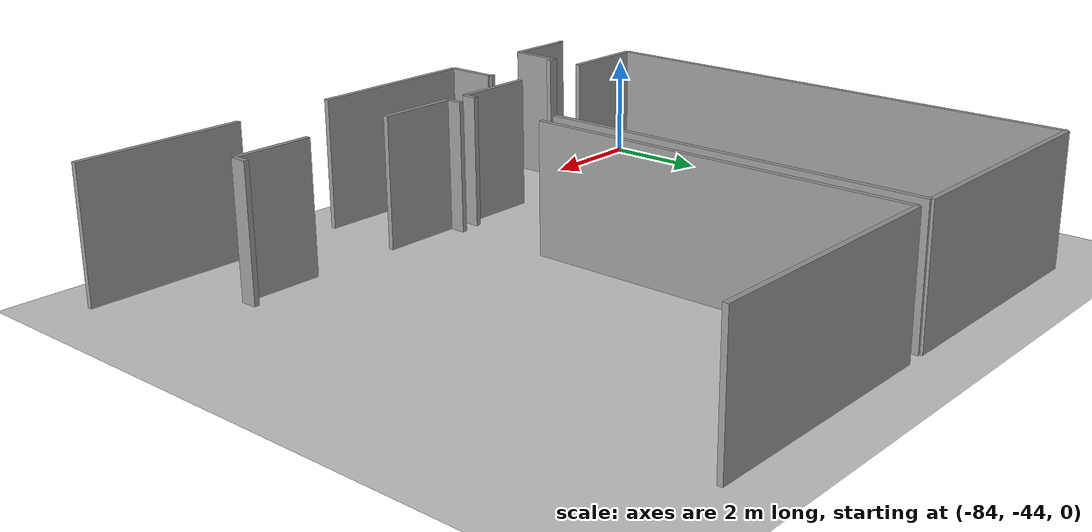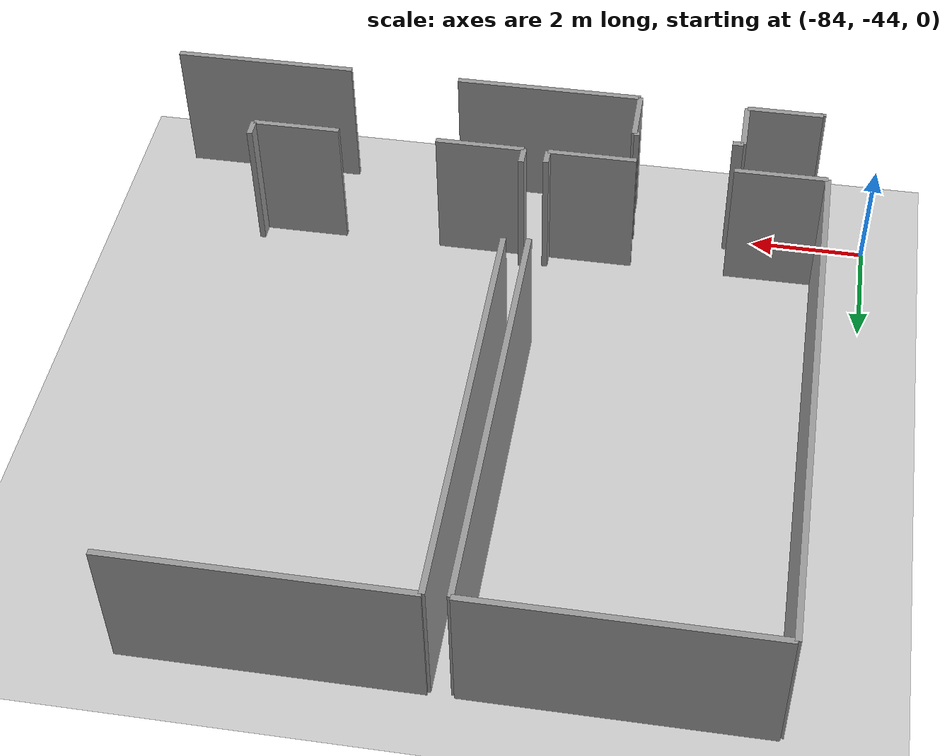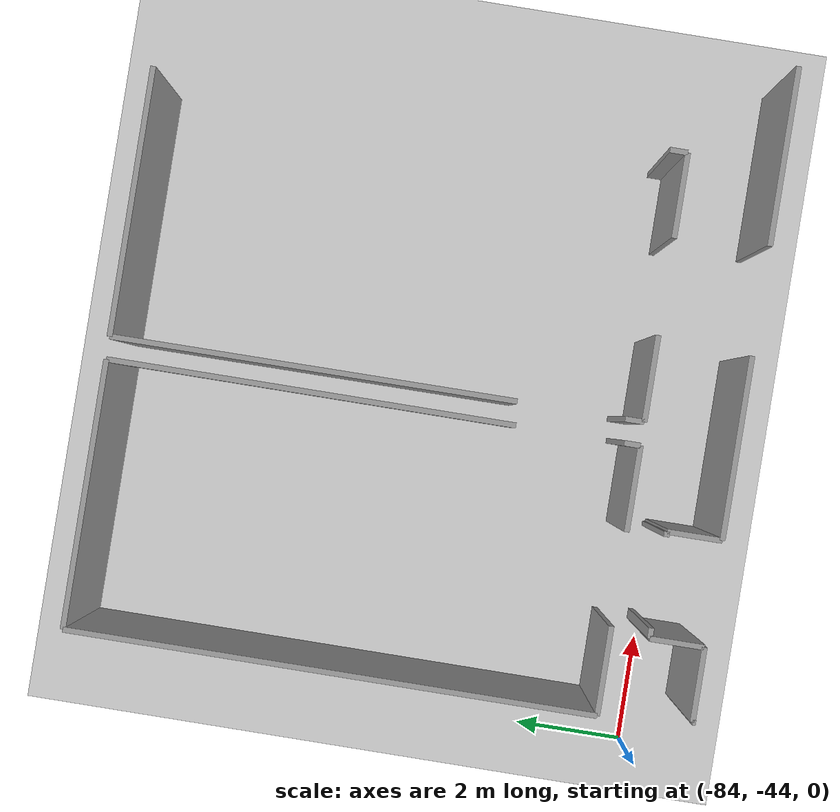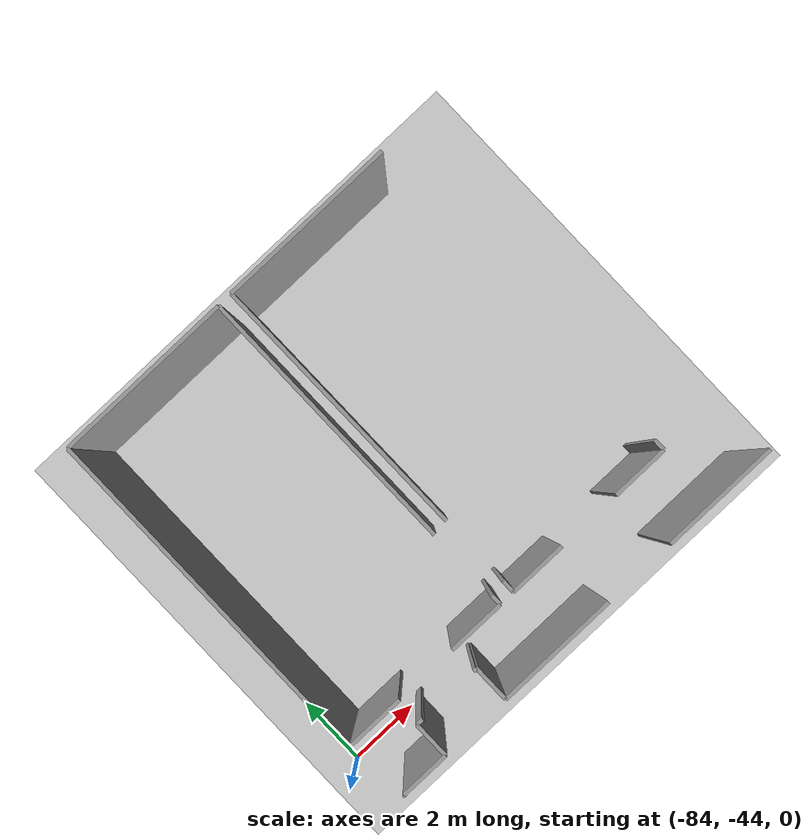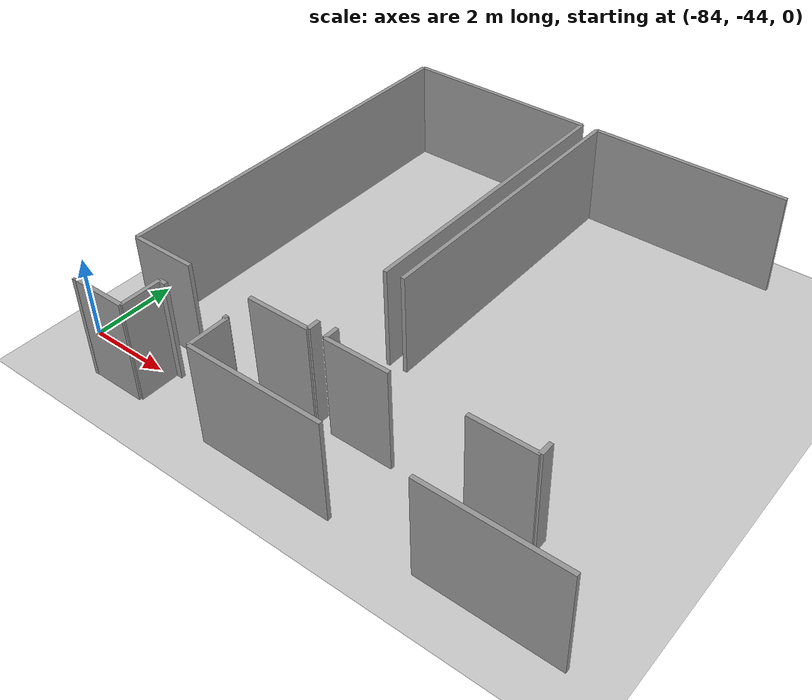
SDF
<sdf version="1.6">
 <world name="default">
  <model name="ground_plane">
   <static>1</static>
   <link name="link">
    <collision name="collision">
     <geometry><plane><normal>0 0 1</normal><size>100 100</size></plane></geometry>
     <surface><friction><ode><mu>100</mu><mu2>50</mu2></ode></friction></surface>
    </collision>
    <visual name="visual">
     <cast_shadows>0</cast_shadows>
     <geometry><plane><normal>0 0 1</normal><size>100 100</size></plane></geometry>
     <material>
      <script><uri>file://media/materials/scripts/gazebo.material</uri><name>Gazebo/Grey</name></script>
     </material>
    </visual>
   </link>
  </model>
  <model name="0510045925_40">
   <static>1</static>
   <link name="Wall_1151">
    <collision name="Wall_1151_Collision">
     <geometry><box><size>9.59214233141 0.1 2.5</size></box></geometry>
     <pose>4.79607116571 0 1.25 0 0 0</pose>
    </collision>
    <visual name="Wall_1151_Visual">
     <pose>4.79607116571 0 1.25 0 0 0</pose>
     <geometry><box><size>9.59214233141 0.1 2.5</size></box></geometry>
     <material>
      <script><uri>file://media/materials/scripts/gazebo.material</uri><name>Gazebo/Grey</name></script>
      <ambient>1 1 1 1</ambient>
     </material>
    </visual>
    <pose>50.806121672 -144.222659323 0 0 0 1.57079632679</pose>
   </link>
   <link name="Wall_1152">
    <collision name="Wall_1152_Collision">
     <geometry><box><size>4.84810030202 0.1 2.5</size></box></geometry>
     <pose>2.42405015101 0 1.25 0 0 0</pose>
    </collision>
    <visual name="Wall_1152_Visual">
     <pose>2.42405015101 0 1.25 0 0 0</pose>
     <geometry><box><size>4.84810030202 0.1 2.5</size></box></geometry>
     <material>
      <script><uri>file://media/materials/scripts/gazebo.material</uri><name>Gazebo/Grey</name></script>
      <ambient>1 1 1 1</ambient>
     </material>
    </visual>
    <pose>50.806121672 -134.630516992 0 0 0 0.0</pose>
   </link>
   <link name="Wall_1153">
    <collision name="Wall_1153_Collision">
     <geometry><box><size>7.35285906449 0.1 2.5</size></box></geometry>
     <pose>3.67642953225 0 1.25 0 0 0</pose>
    </collision>
    <visual name="Wall_1153_Visual">
     <pose>3.67642953225 0 1.25 0 0 0</pose>
     <geometry><box><size>7.35285906449 0.1 2.5</size></box></geometry>
     <material>
      <script><uri>file://media/materials/scripts/gazebo.material</uri><name>Gazebo/Grey</name></script>
      <ambient>1 1 1 1</ambient>
     </material>
    </visual>
    <pose>55.6542219741 -134.630516992 0 0 0 -1.57079632679</pose>
   </link>
   <link name="Wall_1154">
    <collision name="Wall_1154_Collision">
     <geometry><box><size>0.295677774676 0.1 2.5</size></box></geometry>
     <pose>0.147838887338 0 1.25 0 0 0</pose>
    </collision>
    <visual name="Wall_1154_Visual">
     <pose>0.147838887338 0 1.25 0 0 0</pose>
     <geometry><box><size>0.295677774676 0.1 2.5</size></box></geometry>
     <material>
      <script><uri>file://media/materials/scripts/gazebo.material</uri><name>Gazebo/Grey</name></script>
      <ambient>1 1 1 1</ambient>
     </material>
    </visual>
    <pose>55.6542219741 -143.925458745 0 0 0 -1.57079632679</pose>
   </link>
   <link name="Wall_1155">
    <collision name="Wall_1155_Collision">
     <geometry><box><size>1.5499606609 0.1 2.5</size></box></geometry>
     <pose>0.774980330448 0 1.25 0 0 0</pose>
    </collision>
    <visual name="Wall_1155_Visual">
     <pose>0.774980330448 0 1.25 0 0 0</pose>
     <geometry><box><size>1.5499606609 0.1 2.5</size></box></geometry>
     <material>
      <script><uri>file://media/materials/scripts/gazebo.material</uri><name>Gazebo/Grey</name></script>
      <ambient>1 1 1 1</ambient>
     </material>
    </visual>
    <pose>55.6542219741 -144.221136519 0 0 0 3.14159265359</pose>
   </link>
   <link name="Wall_1156">
    <collision name="Wall_1156_Collision">
     <geometry><box><size>1.6080817342 0.1 2.5</size></box></geometry>
     <pose>0.804040867098 0 1.25 0 0 0</pose>
    </collision>
    <visual name="Wall_1156_Visual">
     <pose>0.804040867098 0 1.25 0 0 0</pose>
     <geometry><box><size>1.6080817342 0.1 2.5</size></box></geometry>
     <material>
      <script><uri>file://media/materials/scripts/gazebo.material</uri><name>Gazebo/Grey</name></script>
      <ambient>1 1 1 1</ambient>
     </material>
    </visual>
    <pose>52.4142026852 -144.221136519 0 0 0 -3.14064568418</pose>
   </link>
   <link name="Wall_1157">
    <collision name="Wall_1157_Collision">
     <geometry><box><size>4.8468312987 0.1 2.5</size></box></geometry>
     <pose>2.42341564935 0 1.25 0 0 0</pose>
    </collision>
    <visual name="Wall_1157_Visual">
     <pose>2.42341564935 0 1.25 0 0 0</pose>
     <geometry><box><size>4.8468312987 0.1 2.5</size></box></geometry>
     <material>
      <script><uri>file://media/materials/scripts/gazebo.material</uri><name>Gazebo/Grey</name></script>
      <ambient>1 1 1 1</ambient>
     </material>
    </visual>
    <pose>56.0636024466 -134.622395371 0 0 0 0.0</pose>
   </link>
   <link name="Wall_1159">
    <collision name="Wall_1159_Collision">
     <geometry><box><size>0.322834445826 0.1 2.5</size></box></geometry>
     <pose>0.161417222913 0 1.25 0 0 0</pose>
    </collision>
    <visual name="Wall_1159_Visual">
     <pose>0.161417222913 0 1.25 0 0 0</pose>
     <geometry><box><size>0.322834445826 0.1 2.5</size></box></geometry>
     <material>
      <script><uri>file://media/materials/scripts/gazebo.material</uri><name>Gazebo/Grey</name></script>
      <ambient>1 1 1 1</ambient>
     </material>
    </visual>
    <pose>60.9104337453 -143.89677927 0 0 0 -1.57079632679</pose>
   </link>
   <link name="Wall_1160">
    <collision name="Wall_1160_Collision">
     <geometry><box><size>1.53447882033 0.1 2.5</size></box></geometry>
     <pose>0.767239410167 0 1.25 0 0 0</pose>
    </collision>
    <visual name="Wall_1160_Visual">
     <pose>0.767239410167 0 1.25 0 0 0</pose>
     <geometry><box><size>1.53447882033 0.1 2.5</size></box></geometry>
     <material>
      <script><uri>file://media/materials/scripts/gazebo.material</uri><name>Gazebo/Grey</name></script>
      <ambient>1 1 1 1</ambient>
     </material>
    </visual>
    <pose>60.9104337453 -144.219613715 0 0 0 3.14159265359</pose>
   </link>
   <link name="Wall_1161">
    <collision name="Wall_1161_Collision">
     <geometry><box><size>1.55782848151 0.1 2.5</size></box></geometry>
     <pose>0.778914240755 0 1.25 0 0 0</pose>
    </collision>
    <visual name="Wall_1161_Visual">
     <pose>0.778914240755 0 1.25 0 0 0</pose>
     <geometry><box><size>1.55782848151 0.1 2.5</size></box></geometry>
     <material>
      <script><uri>file://media/materials/scripts/gazebo.material</uri><name>Gazebo/Grey</name></script>
      <ambient>1 1 1 1</ambient>
     </material>
    </visual>
    <pose>57.6361513667 -144.219613715 0 0 0 3.14159265359</pose>
   </link>
   <link name="Wall_1162">
    <collision name="Wall_1162_Collision">
     <geometry><box><size>0.343138499023 0.1 2.5</size></box></geometry>
     <pose>0.171569249511 0 1.25 0 0 0</pose>
    </collision>
    <visual name="Wall_1162_Visual">
     <pose>0.171569249511 0 1.25 0 0 0</pose>
     <geometry><box><size>0.343138499023 0.1 2.5</size></box></geometry>
     <material>
      <script><uri>file://media/materials/scripts/gazebo.material</uri><name>Gazebo/Grey</name></script>
      <ambient>1 1 1 1</ambient>
     </material>
    </visual>
    <pose>56.0783228852 -144.219613715 0 0 0 1.57079632679</pose>
   </link>
   <link name="Wall_1163">
    <collision name="Wall_1163_Collision">
     <geometry><box><size>7.31607277735 0.1 2.5</size></box></geometry>
     <pose>3.65803638868 0 1.25 0 0 0</pose>
    </collision>
    <visual name="Wall_1163_Visual">
     <pose>3.65803638868 0 1.25 0 0 0</pose>
     <geometry><box><size>7.31607277735 0.1 2.5</size></box></geometry>
     <material>
      <script><uri>file://media/materials/scripts/gazebo.material</uri><name>Gazebo/Grey</name></script>
      <ambient>1 1 1 1</ambient>
     </material>
    </visual>
    <pose>56.0783228852 -141.938453339 0 0 0 1.57280839651</pose>
   </link>
   <link name="Wall_1269">
    <collision name="Wall_1269_Collision">
     <geometry><box><size>0.0568513489506 0.1 2.5</size></box></geometry>
     <pose>0.0284256744753 0 1.25 0 0 0</pose>
    </collision>
    <visual name="Wall_1269_Visual">
     <pose>0.0284256744753 0 1.25 0 0 0</pose>
     <geometry><box><size>0.0568513489506 0.1 2.5</size></box></geometry>
     <material>
      <script><uri>file://media/materials/scripts/gazebo.material</uri><name>Gazebo/Grey</name></script>
      <ambient>1 1 1 1</ambient>
     </material>
    </visual>
    <pose>50.9627166823 -145.968300297 0 0 0 1.57079632679</pose>
   </link>
   <link name="Wall_1270">
    <collision name="Wall_1270_Collision">
     <geometry><box><size>1.3420979163 0.1 2.5</size></box></geometry>
     <pose>0.671048958148 0 1.25 0 0 0</pose>
    </collision>
    <visual name="Wall_1270_Visual">
     <pose>0.671048958148 0 1.25 0 0 0</pose>
     <geometry><box><size>1.3420979163 0.1 2.5</size></box></geometry>
     <material>
      <script><uri>file://media/materials/scripts/gazebo.material</uri><name>Gazebo/Grey</name></script>
      <ambient>1 1 1 1</ambient>
     </material>
    </visual>
    <pose>50.9627166823 -145.911448948 0 0 0 0.0</pose>
   </link>
   <link name="Wall_1271">
    <collision name="Wall_1271_Collision">
     <geometry><box><size>0.983985178041 0.1 2.5</size></box></geometry>
     <pose>0.491992589021 0 1.25 0 0 0</pose>
    </collision>
    <visual name="Wall_1271_Visual">
     <pose>0.491992589021 0 1.25 0 0 0</pose>
     <geometry><box><size>0.983985178041 0.1 2.5</size></box></geometry>
     <material>
      <script><uri>file://media/materials/scripts/gazebo.material</uri><name>Gazebo/Grey</name></script>
      <ambient>1 1 1 1</ambient>
     </material>
    </visual>
    <pose>52.3048145986 -145.911448948 0 0 0 1.57079632679</pose>
   </link>
   <link name="Wall_1272">
    <collision name="Wall_1272_Collision">
     <geometry><box><size>0.190858100048 0.1 2.5</size></box></geometry>
     <pose>0.0954290500241 0 1.25 0 0 0</pose>
    </collision>
    <visual name="Wall_1272_Visual">
     <pose>0.0954290500241 0 1.25 0 0 0</pose>
     <geometry><box><size>0.190858100048 0.1 2.5</size></box></geometry>
     <material>
      <script><uri>file://media/materials/scripts/gazebo.material</uri><name>Gazebo/Grey</name></script>
      <ambient>1 1 1 1</ambient>
     </material>
    </visual>
    <pose>52.3048145986 -144.92746377 0 0 0 0.0</pose>
   </link>
   <link name="Wall_1273">
    <collision name="Wall_1273_Collision">
     <geometry><box><size>0.0931448440395 0.1 2.5</size></box></geometry>
     <pose>0.0465724220197 0 1.25 0 0 0</pose>
    </collision>
    <visual name="Wall_1273_Visual">
     <pose>0.0465724220197 0 1.25 0 0 0</pose>
     <geometry><box><size>0.0931448440395 0.1 2.5</size></box></geometry>
     <material>
      <script><uri>file://media/materials/scripts/gazebo.material</uri><name>Gazebo/Grey</name></script>
      <ambient>1 1 1 1</ambient>
     </material>
    </visual>
    <pose>54.1314179843 -144.92746377 0 0 0 0.0</pose>
   </link>
   <link name="Wall_1274">
    <collision name="Wall_1274_Collision">
     <geometry><box><size>0.992360599985 0.1 2.5</size></box></geometry>
     <pose>0.496180299992 0 1.25 0 0 0</pose>
    </collision>
    <visual name="Wall_1274_Visual">
     <pose>0.496180299992 0 1.25 0 0 0</pose>
     <geometry><box><size>0.992360599985 0.1 2.5</size></box></geometry>
     <material>
      <script><uri>file://media/materials/scripts/gazebo.material</uri><name>Gazebo/Grey</name></script>
      <ambient>1 1 1 1</ambient>
     </material>
    </visual>
    <pose>54.2245628284 -144.92746377 0 0 0 -1.57079632679</pose>
   </link>
   <link name="Wall_1275">
    <collision name="Wall_1275_Collision">
     <geometry><box><size>3.31286007969 0.1 2.5</size></box></geometry>
     <pose>1.65643003985 0 1.25 0 0 0</pose>
    </collision>
    <visual name="Wall_1275_Visual">
     <pose>1.65643003985 0 1.25 0 0 0</pose>
     <geometry><box><size>3.31286007969 0.1 2.5</size></box></geometry>
     <material>
      <script><uri>file://media/materials/scripts/gazebo.material</uri><name>Gazebo/Grey</name></script>
      <ambient>1 1 1 1</ambient>
     </material>
    </visual>
    <pose>54.2245628284 -145.91982437 0 0 0 0.0</pose>
   </link>
   <link name="Wall_1276">
    <collision name="Wall_1276_Collision">
     <geometry><box><size>3.22631405294 0.1 2.5</size></box></geometry>
     <pose>1.61315702647 0 1.25 0 0 0</pose>
    </collision>
    <visual name="Wall_1276_Visual">
     <pose>1.61315702647 0 1.25 0 0 0</pose>
     <geometry><box><size>3.22631405294 0.1 2.5</size></box></geometry>
     <material>
      <script><uri>file://media/materials/scripts/gazebo.material</uri><name>Gazebo/Grey</name></script>
      <ambient>1 1 1 1</ambient>
     </material>
    </visual>
    <pose>59.5079312708 -145.91982437 0 0 0 0.0</pose>
   </link>
   <pose>-133.95 101.083118449 0 0 0 0</pose>
  </model>
 </world>
</sdf>
